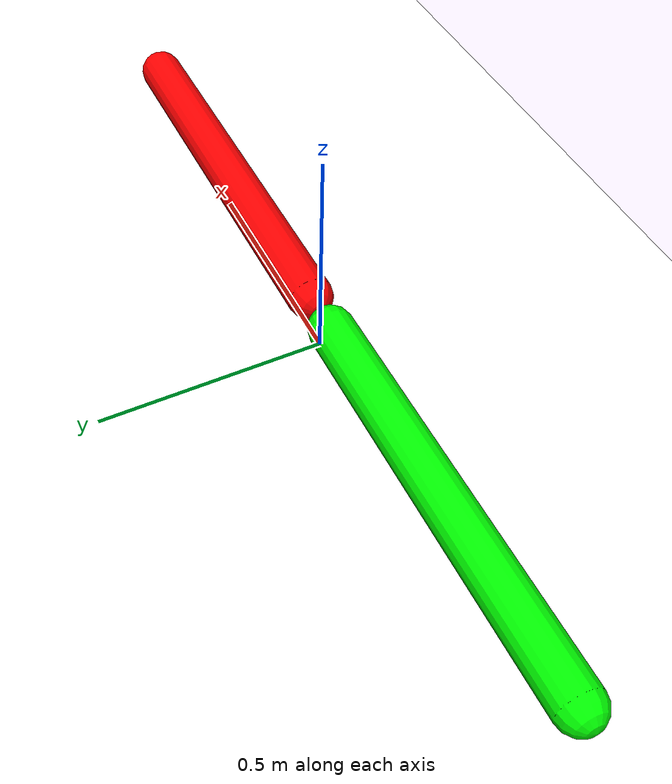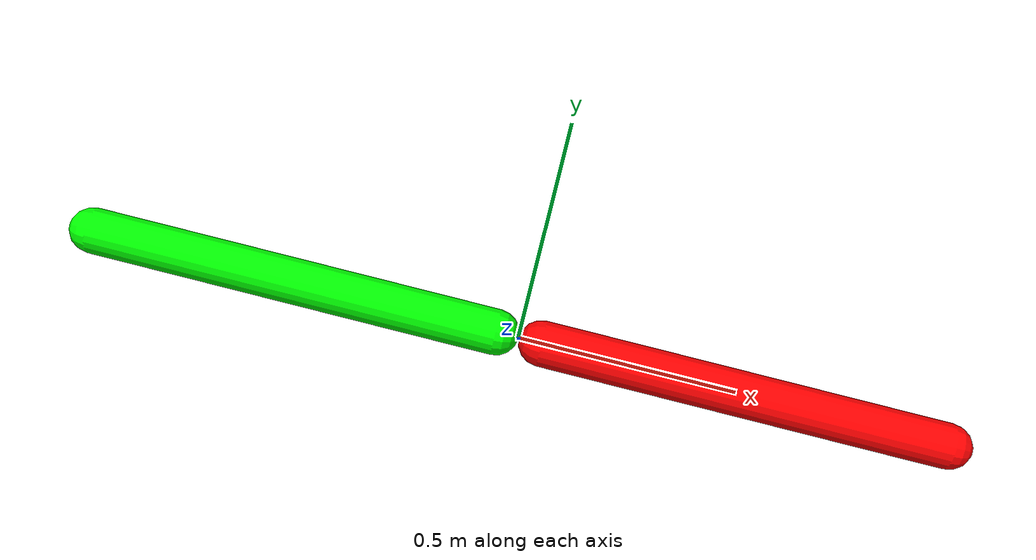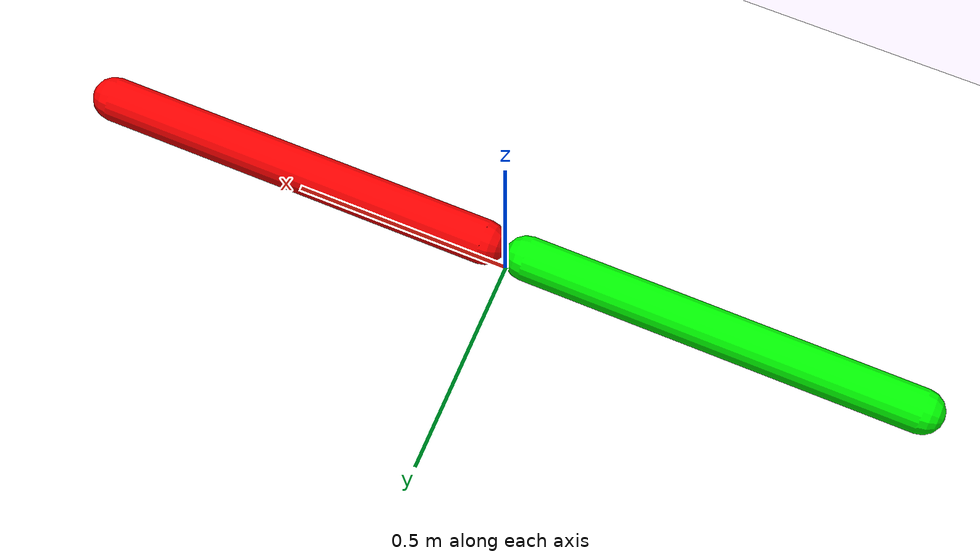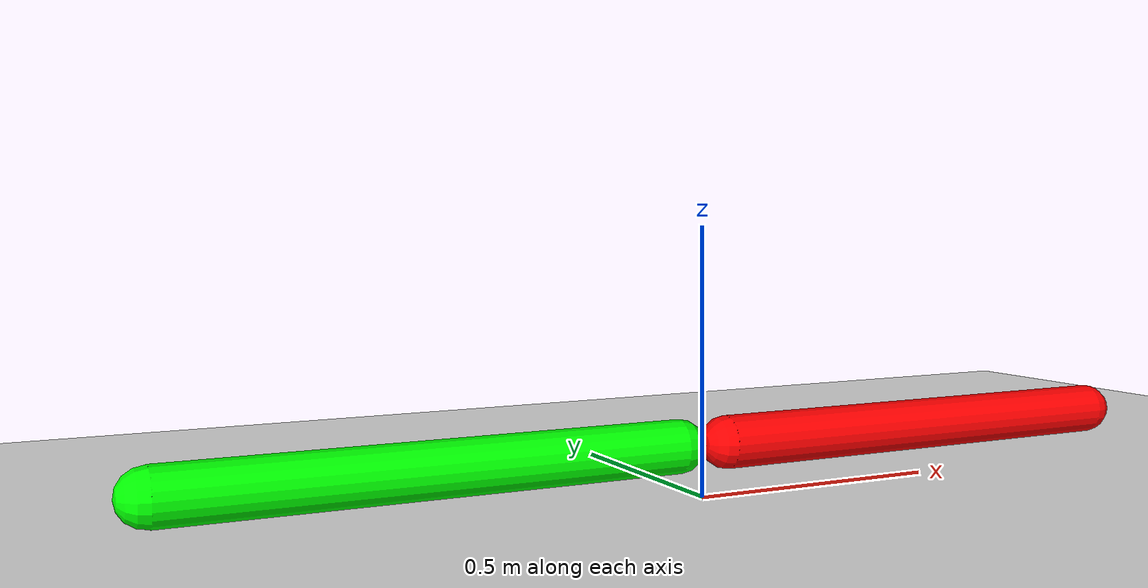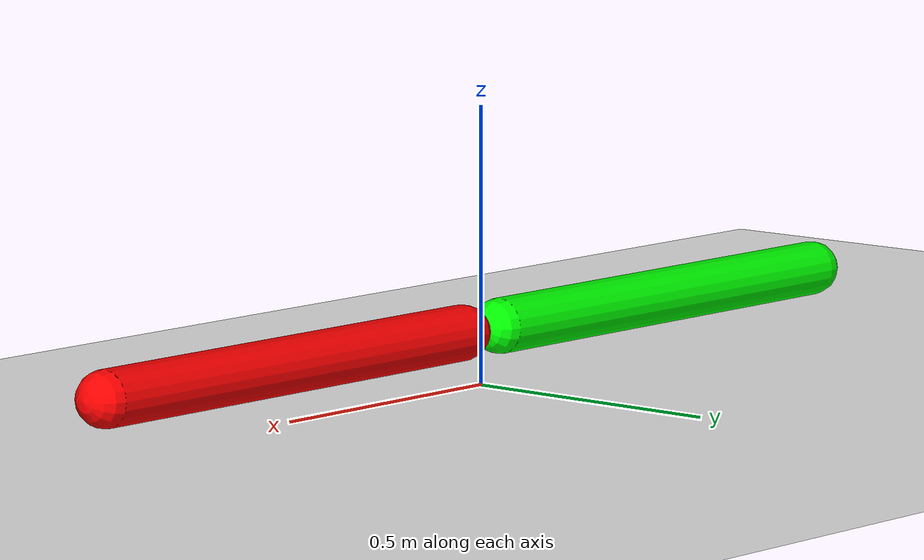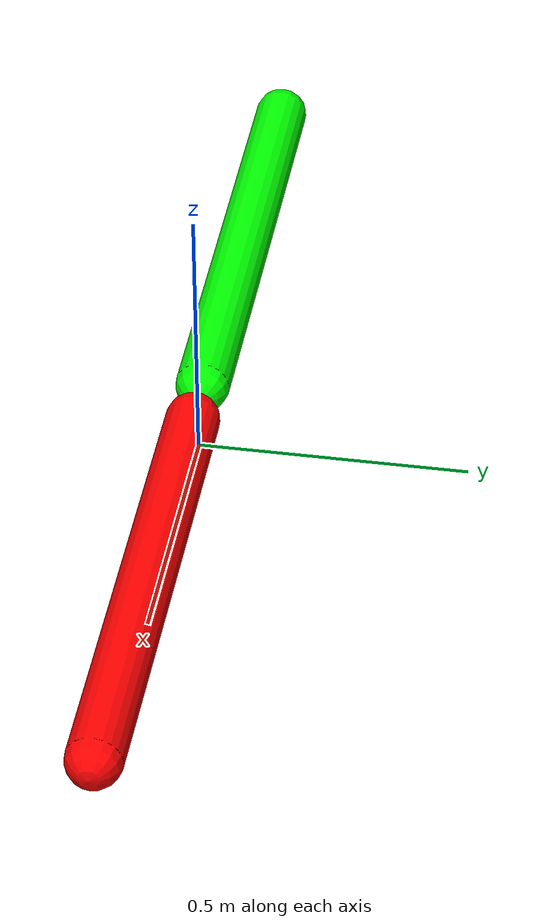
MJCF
<mujoco model="rototranslational_bar">
    <compiler angle="radian" inertiafromgeom="true"/>
    <option timestep="0.02" gravity="0 0 -9.81"/>
    <default>
        <geom contype="0" friction="100 100 100" rgba="0.7 0.7 0 1"/>
  </default>
    <asset>
        <texture name="grid" type="2d" builtin="checker" width="512" height="512" rgb1="0.8 0.8 0.8" rgb2="0.5 0.9 0.6" />
        <material name="grid_material" texture="grid" texrepeat="5 5" />
    </asset>
    <!-- World Elements -->
    <worldbody>
        <!-- XY Plane -->
        <geom type="plane" size="5 5 0.3" rgba="1 1 1 1" material="grid_material"/>

        <!-- Bar Definition -->

        <body name="left_bar" pos="-0.5 0 0.1">
            <!-- Bar Geometry -->
            <geom type="capsule" size="0.05 0.45" rgba="0 1 0 1" euler="0 1.5708 0"/>

            <!-- Joints for Left Movement -->
            <joint name="left_joint_x" type="slide" axis="1 0 0" pos="-0.5 0 0" range="-5 5"/>
            <joint name="left_joint_y" type="slide" axis="0 1 0" pos="-0.5 0 0" range="-5 5"/>
            <joint name="left_rotation_motor" type="hinge" axis="0 0 1" pos="-0.5 0 0"/>

        </body>
        <body name="right_bar" pos="0.5 0 0.1">
            <!-- Bar Geometry -->
            <geom type="capsule" size="0.05 0.45" rgba="1 0 0 1" euler="0 1.5708 0"/>

            <!-- Joints for Right Movement -->
            <joint name="right_joint_x" type="slide" axis="1 0 0" pos="0.5 0 0" range="-5 5"/>
            <joint name="right_joint_y" type="slide" axis="0 1 0" pos="0.5 0 0" range="-5 5"/>
            <joint name="right_rotation_motor" type="hinge" axis="0 0 1" pos="0.5 0 0"/>

        </body>

    </worldbody>

    <equality>
      <weld name="left_bar_toright_bar" body1="left_bar" body2="right_bar"/>
    </equality>

    <!-- Actuator Definition -->
    <actuator>
        <!-- Forces Applied to Left Extremity -->
        <motor name="green_force_x" joint="left_joint_x" gear="2.5" ctrlrange="-10 10"/>
        <motor name="green_force_y" joint="left_joint_y" gear="2.5" ctrlrange="-10 10"/>
        <motor name="red_force_x" joint="right_joint_x" gear="2.5" ctrlrange="-10 10"/>
        <motor name="red_force_y" joint="right_joint_y" gear="2.5" ctrlrange="-10 10"/>

    </actuator>
</mujoco>
